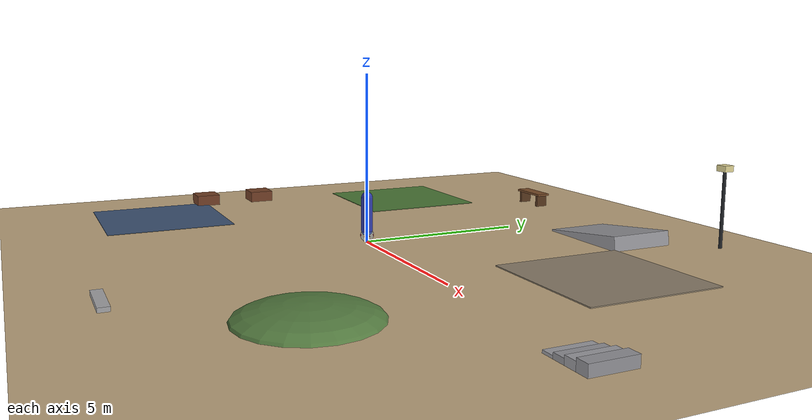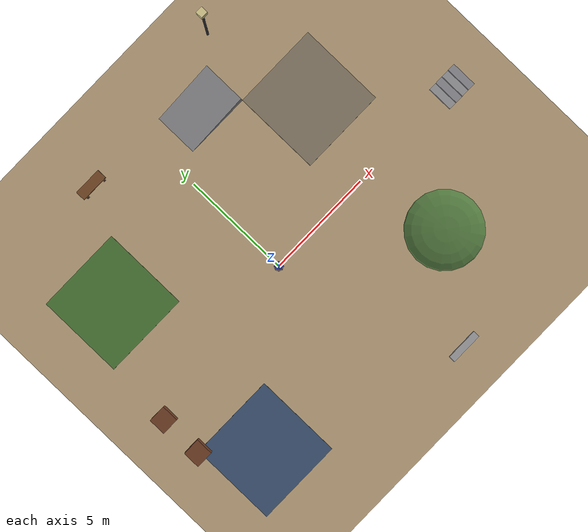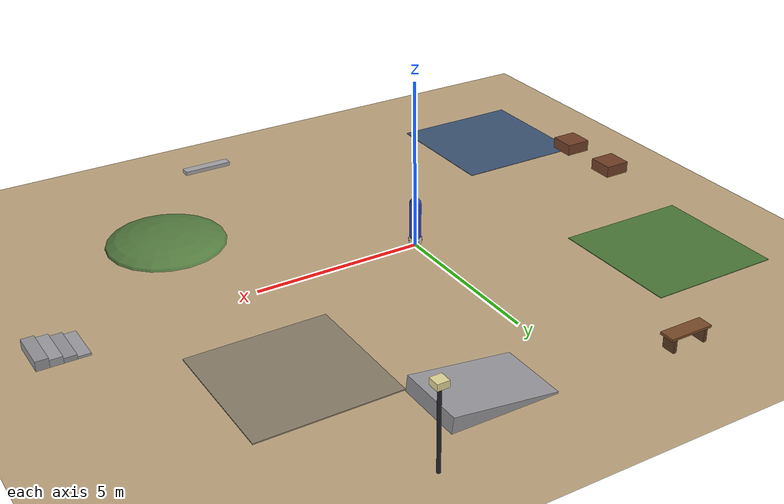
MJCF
<mujoco model="spherebot_v1">
  <compiler angle="radian"/>
  <option timestep="0.001" gravity="0 0 -9.81" cone="pyramidal"/>
  <default>
    <geom friction="0.4 0.001 0.0005"/>
  </default>
  <worldbody>
    <light pos="2 -3 4" dir="-0.4 0.6 -1" diffuse="0.9 0.9 0.9"/>
    <light pos="-2 3 4" dir="0.4 -0.6 -1" diffuse="0.5 0.5 0.5"/>
    <geom name="floor" type="plane" size="30 30 0.1" condim="6" rgba="0.75 0.65 0.5 1"/>
    <body name="shell" pos="0 0 0.203">
      <freejoint name="shell_free"/>
      <inertial mass="1.5535426999413815" pos="0 0 0" diaginertia="0.04267996074792293 0.04267996074792293 0.04267996074792293"/>
      <geom name="shellg" type="sphere" size="0.203" condim="6" rgba="0.55 0.75 0.95 0.30"/>
      <geom type="sphere" size="0.015" pos="0.2030 0.0000 0" rgba="0.9 0.1 0.1 1" contype="0" conaffinity="0"/>
<geom type="sphere" size="0.015" pos="0.1435 0.1435 0" rgba="0.9 0.1 0.1 1" contype="0" conaffinity="0"/>
<geom type="sphere" size="0.015" pos="0.0000 0.2030 0" rgba="0.9 0.1 0.1 1" contype="0" conaffinity="0"/>
<geom type="sphere" size="0.015" pos="-0.1435 0.1435 0" rgba="0.9 0.1 0.1 1" contype="0" conaffinity="0"/>
<geom type="sphere" size="0.015" pos="-0.2030 0.0000 0" rgba="0.9 0.1 0.1 1" contype="0" conaffinity="0"/>
<geom type="sphere" size="0.015" pos="-0.1435 -0.1435 0" rgba="0.9 0.1 0.1 1" contype="0" conaffinity="0"/>
<geom type="sphere" size="0.015" pos="-0.0000 -0.2030 0" rgba="0.9 0.1 0.1 1" contype="0" conaffinity="0"/>
<geom type="sphere" size="0.015" pos="0.1435 -0.1435 0" rgba="0.9 0.1 0.1 1" contype="0" conaffinity="0"/>

      <site name="shell_ctr" pos="0 0 0" size="0.005"/>
      <!-- chassis: hangs from diameter axle (bearing hinge y), elastomer-isolated (slide z) -->
      <body name="chassis" pos="0 0 0">
        <inertial mass="0.985" pos="0 0 -0.02" diaginertia="0.006 0.006 0.003"/>
        <joint name="iso_z" type="slide" axis="0 0 1" stiffness="50000.0" damping="185.0"
               range="-0.012 0.012" limited="true"/>
        <joint name="bearing_y" type="hinge" axis="0 1 0" frictionloss="0.002"/>
        <geom type="box" size="0.05 0.05 0.02" pos="0 0 -0.02" rgba="0.3 0.3 0.3 1" contype="0" conaffinity="0"/>
        <geom type="capsule" size="0.008" fromto="0 0 0 0 0 0.12" rgba="0.4 0.4 0.45 1" contype="0" conaffinity="0"/>
        <geom name="camera" type="box" size="0.015 0.015 0.01" pos="0 0 0.125" rgba="0.1 0.9 0.2 1" contype="0" conaffinity="0"/>
        <camera name="campov" pos="0 0 0.125" xyaxes="1 0 0 0 0 1" fovy="62"/>
        <light name="headlight" pos="0 0 0.12" dir="1 0 -0.15" directional="false" diffuse="0.8 0.8 0.75" specular="0.2 0.2 0.2"/>
        <site name="cam_site" pos="0 0 0.125" size="0.005"/>
        <!-- pendulum: battery + ballast, lateral-lean hinge x for steering -->
        <body name="pendulum" pos="0 0 0">
          <inertial mass="2.8" pos="0 0 -0.1557" diaginertia="0.0695 0.0695 0.0055"/>
          <joint name="steer_x" type="hinge" axis="1 0 0" frictionloss="0.002"/>
          <geom type="cylinder" size="0.06 0.004" pos="0 0 -0.15" rgba="0.5 0.5 0.55 1" contype="0" conaffinity="0"/>
          <geom type="box" size="0.055 0.03 0.028" pos="0 0 -0.09" rgba="0.8 0.6 0.1 1" contype="0" conaffinity="0"/>
          <geom type="capsule" size="0.006" fromto="0 0 0 0 0 -0.12" rgba="0.4 0.4 0.45 1" contype="0" conaffinity="0"/>
        </body>
      </body>
    </body>

    <!-- ===== terrain park: surfaces (priority=1 -> their friction wins vs floor), hills, steps, curb ===== -->
    <geom name="pad_grass" group="1"  type="box" size="2 2 0.010" pos="-6 4 0.010" condim="6" priority="1" friction="1.2 0.05 0.010"  rgba="0.30 0.48 0.22 1"/>
    <geom name="pad_gravel" group="1" type="box" size="2 2 0.015" pos="6 4 0.015"  condim="6" priority="1" friction="1.6 0.08 0.020"  rgba="0.55 0.50 0.42 1"/>
    <geom name="pad_slick" group="1"  type="box" size="2 2 0.008" pos="-6 -5 0.008" condim="6" priority="1" friction="0.15 0.0005 0.0001" rgba="0.24 0.33 0.46 1"/>
    <geom name="hill" group="1" type="ellipsoid" size="1.8 1.8 0.45" pos="6 -4 -0.10" rgba="0.34 0.50 0.26 1"/>
    <geom name="ramp" group="1" type="box" size="1.5 1.0 0.3" pos="2.5 7 -0.083" euler="0 -0.13 0" rgba="0.60 0.60 0.62 1"/>
    <geom name="step_0" group="1" type="box" size="0.175 0.6 0.035" pos="10.000 0 0.035" rgba="0.62 0.62 0.64 1"/>
    <geom name="step_1" group="1" type="box" size="0.175 0.6 0.070" pos="10.350 0 0.070" rgba="0.58 0.58 0.60 1"/>
    <geom name="step_2" group="1" type="box" size="0.175 0.6 0.105" pos="10.700 0 0.105" rgba="0.62 0.62 0.64 1"/>
    <geom name="step_3" group="1" type="box" size="0.175 0.6 0.140" pos="11.050 0 0.140" rgba="0.58 0.58 0.60 1"/>
    <geom name="curb" group="1" type="box" size="0.75 0.15 0.06" pos="3 -8 0.06" rgba="0.65 0.65 0.66 1"/>
    <!-- real-world objects (group 1: lidar hazards) -->
    <geom name="bench_leg_l" group="1" type="box" size="0.05 0.20 0.20" pos="-3.5 8 0.20" rgba="0.35 0.22 0.12 1"/>
    <geom name="bench_leg_r" group="1" type="box" size="0.05 0.20 0.20" pos="-2.5 8 0.20" rgba="0.35 0.22 0.12 1"/>
    <geom name="bench_seat" group="1" type="box" size="0.65 0.225 0.035" pos="-3 8 0.425" rgba="0.48 0.30 0.16 1"/>
    <geom name="lamp_pole" group="1" type="cylinder" size="0.05 1.15" pos="5 9 1.15" rgba="0.15 0.16 0.18 1"/>
    <geom name="lamp_head" group="1" type="box" size="0.16 0.16 0.09" pos="5 9 2.35" rgba="0.9 0.85 0.6 1"/>
    <geom name="planter_a" group="1" type="box" size="0.40 0.40 0.18" pos="-8 -1 0.18" rgba="0.45 0.25 0.15 1"/>
    <geom name="planter_b" group="1" type="box" size="0.40 0.40 0.18" pos="-8 -3 0.18" rgba="0.45 0.25 0.15 1"/>
    <!-- pedestrians: mocap capsules, same trick as the validated campus sim -->
    <body name="ped_0" mocap="true" pos="0 0 0"><geom name="pedg_0" group="1" type="capsule" size="0.17 0.5" pos="0 0 0.85" rgba="0.20 0.25 0.70 1"/></body>
    <body name="ped_1" mocap="true" pos="0 0 0"><geom name="pedg_1" group="1" type="capsule" size="0.17 0.5" pos="0 0 0.85" rgba="0.70 0.25 0.20 1"/></body>
    <body name="ped_2" mocap="true" pos="0 0 0"><geom name="pedg_2" group="1" type="capsule" size="0.17 0.5" pos="0 0 0.85" rgba="0.20 0.55 0.30 1"/></body>
    <body name="ped_3" mocap="true" pos="0 0 0"><geom name="pedg_3" group="1" type="capsule" size="0.17 0.5" pos="0 0 0.85" rgba="0.65 0.55 0.20 1"/></body>
  </worldbody>
  <actuator>
    <motor name="drive" joint="bearing_y" ctrllimited="true" ctrlrange="-2.6477955 2.6477955"/>
    <motor name="steer" joint="steer_x" ctrllimited="true" ctrlrange="-2.6477955 2.6477955"/>
  </actuator>
</mujoco>
